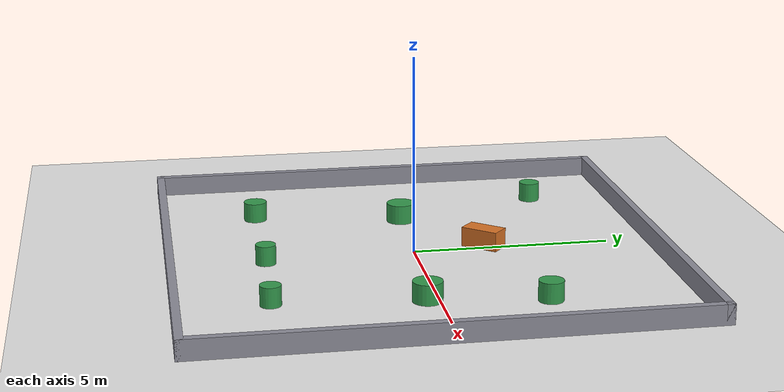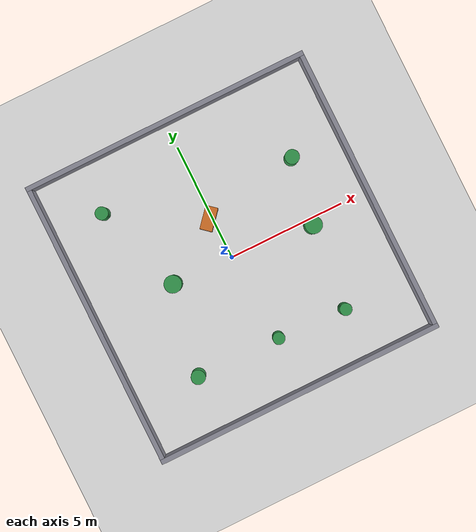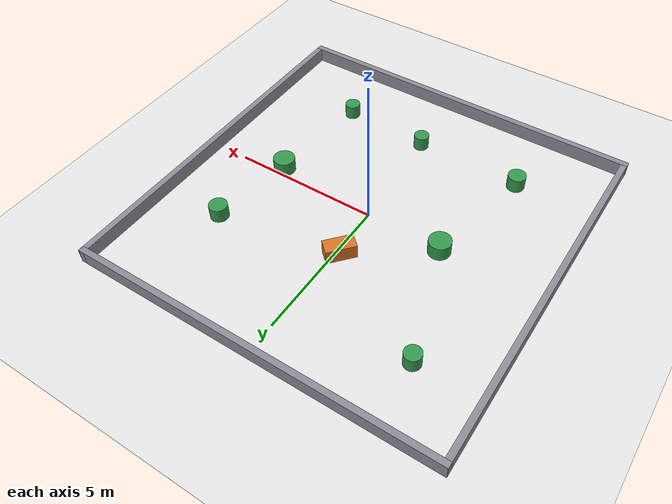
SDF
<?xml version="1.0" ?>
<!-- GENERATED by worlds/gen_worlds.py - do not edit by hand. -->
<sdf version="1.6">
  <world name="simple">
    <gravity>0 0 -9.8</gravity>
    <physics name="ode_500hz" type="ode">
      <max_step_size>0.002</max_step_size>
      <real_time_factor>1.0</real_time_factor>
      <real_time_update_rate>500</real_time_update_rate>
    </physics>

    <!-- ROS interface: exposes /get_entity_state and /set_entity_state (used by the episode runner) -->
    <plugin name="gazebo_ros_state" filename="libgazebo_ros_state.so">
      <ros><namespace>/</namespace></ros>
      <update_rate>10.0</update_rate>
    </plugin>

    <scene>
      <ambient>0.6 0.6 0.6 1</ambient>
      <background>0.85 0.9 0.95 1</background>
      <shadows>false</shadows>
    </scene>

    <light name="sun" type="directional">
      <cast_shadows>false</cast_shadows>
      <pose>0 0 10 0 0 0</pose>
      <diffuse>0.8 0.8 0.8 1</diffuse>
      <specular>0.2 0.2 0.2 1</specular>
      <direction>-0.3 0.2 -1.0</direction>
    </light>

    <model name="ground_plane">
      <static>true</static>
      <link name="link">
        <collision name="collision">
          <geometry><plane><normal>0 0 1</normal><size>40 40</size></plane></geometry>
          <surface><friction><ode><mu>100</mu><mu2>50</mu2></ode></friction></surface>
        </collision>
        <visual name="visual">
          <geometry><plane><normal>0 0 1</normal><size>40 40</size></plane></geometry>
          <material><ambient>0.9 0.9 0.9 1</ambient><diffuse>0.9 0.9 0.9 1</diffuse></material>
        </visual>
      </link>
    </model>

    <model name="wall_north">
      <static>true</static>
      <pose>0.0000 6.1000 0.2500 0 0 0.0000</pose>
      <link name="link">
        <collision name="collision"><geometry><box><size>12.4000 0.2000 0.5000</size></box></geometry></collision>
        <visual name="visual"><geometry><box><size>12.4000 0.2000 0.5000</size></box></geometry>
          <material><ambient>0.55 0.55 0.6 1</ambient><diffuse>0.55 0.55 0.6 1</diffuse></material></visual>
      </link>
    </model>
    <model name="wall_south">
      <static>true</static>
      <pose>0.0000 -6.1000 0.2500 0 0 0.0000</pose>
      <link name="link">
        <collision name="collision"><geometry><box><size>12.4000 0.2000 0.5000</size></box></geometry></collision>
        <visual name="visual"><geometry><box><size>12.4000 0.2000 0.5000</size></box></geometry>
          <material><ambient>0.55 0.55 0.6 1</ambient><diffuse>0.55 0.55 0.6 1</diffuse></material></visual>
      </link>
    </model>
    <model name="wall_east">
      <static>true</static>
      <pose>6.1000 0.0000 0.2500 0 0 0.0000</pose>
      <link name="link">
        <collision name="collision"><geometry><box><size>0.2000 12.4000 0.5000</size></box></geometry></collision>
        <visual name="visual"><geometry><box><size>0.2000 12.4000 0.5000</size></box></geometry>
          <material><ambient>0.55 0.55 0.6 1</ambient><diffuse>0.55 0.55 0.6 1</diffuse></material></visual>
      </link>
    </model>
    <model name="wall_west">
      <static>true</static>
      <pose>-6.1000 0.0000 0.2500 0 0 0.0000</pose>
      <link name="link">
        <collision name="collision"><geometry><box><size>0.2000 12.4000 0.5000</size></box></geometry></collision>
        <visual name="visual"><geometry><box><size>0.2000 12.4000 0.5000</size></box></geometry>
          <material><ambient>0.55 0.55 0.6 1</ambient><diffuse>0.55 0.55 0.6 1</diffuse></material></visual>
      </link>
    </model>
    <model name="simple_cyl_0">
      <static>true</static>
      <pose>3.5108 -0.2843 0.2500 0 0 0</pose>
      <link name="link">
        <collision name="collision"><geometry><cylinder><radius>0.3620</radius><length>0.5000</length></cylinder></geometry></collision>
        <visual name="visual"><geometry><cylinder><radius>0.3620</radius><length>0.5000</length></cylinder></geometry>
          <material><ambient>0.2 0.6 0.3 1</ambient><diffuse>0.2 0.6 0.3 1</diffuse></material></visual>
      </link>
    </model>
    <model name="simple_cyl_1">
      <static>true</static>
      <pose>-2.6063 0.0984 0.2500 0 0 0</pose>
      <link name="link">
        <collision name="collision"><geometry><cylinder><radius>0.3675</radius><length>0.5000</length></cylinder></geometry></collision>
        <visual name="visual"><geometry><cylinder><radius>0.3675</radius><length>0.5000</length></cylinder></geometry>
          <material><ambient>0.2 0.6 0.3 1</ambient><diffuse>0.2 0.6 0.3 1</diffuse></material></visual>
      </link>
    </model>
    <model name="simple_cyl_2">
      <static>true</static>
      <pose>0.2411 -3.7412 0.2500 0 0 0</pose>
      <link name="link">
        <collision name="collision"><geometry><cylinder><radius>0.2530</radius><length>0.5000</length></cylinder></geometry></collision>
        <visual name="visual"><geometry><cylinder><radius>0.2530</radius><length>0.5000</length></cylinder></geometry>
          <material><ambient>0.2 0.6 0.3 1</ambient><diffuse>0.2 0.6 0.3 1</diffuse></material></visual>
      </link>
    </model>
    <model name="simple_cyl_3">
      <static>true</static>
      <pose>-3.3518 -3.6975 0.2500 0 0 0</pose>
      <link name="link">
        <collision name="collision"><geometry><cylinder><radius>0.2993</radius><length>0.5000</length></cylinder></geometry></collision>
        <visual name="visual"><geometry><cylinder><radius>0.2993</radius><length>0.5000</length></cylinder></geometry>
          <material><ambient>0.2 0.6 0.3 1</ambient><diffuse>0.2 0.6 0.3 1</diffuse></material></visual>
      </link>
    </model>
    <model name="simple_cyl_4">
      <static>true</static>
      <pose>3.9521 2.5463 0.2500 0 0 0</pose>
      <link name="link">
        <collision name="collision"><geometry><cylinder><radius>0.3040</radius><length>0.5000</length></cylinder></geometry></collision>
        <visual name="visual"><geometry><cylinder><radius>0.3040</radius><length>0.5000</length></cylinder></geometry>
          <material><ambient>0.2 0.6 0.3 1</ambient><diffuse>0.2 0.6 0.3 1</diffuse></material></visual>
      </link>
    </model>
    <model name="simple_cyl_5">
      <static>true</static>
      <pose>-3.9019 3.9136 0.2500 0 0 0</pose>
      <link name="link">
        <collision name="collision"><geometry><cylinder><radius>0.2708</radius><length>0.5000</length></cylinder></geometry></collision>
        <visual name="visual"><geometry><cylinder><radius>0.2708</radius><length>0.5000</length></cylinder></geometry>
          <material><ambient>0.2 0.6 0.3 1</ambient><diffuse>0.2 0.6 0.3 1</diffuse></material></visual>
      </link>
    </model>
    <model name="simple_box_6">
      <static>true</static>
      <pose>-0.1402 1.8195 0.2500 0 0 0.8557</pose>
      <link name="link">
        <collision name="collision"><geometry><box><size>0.9814 0.5106 0.5000</size></box></geometry></collision>
        <visual name="visual"><geometry><box><size>0.9814 0.5106 0.5000</size></box></geometry>
          <material><ambient>0.85 0.45 0.15 1</ambient><diffuse>0.85 0.45 0.15 1</diffuse></material></visual>
      </link>
    </model>
    <model name="simple_cyl_7">
      <static>true</static>
      <pose>3.1644 -3.8916 0.2500 0 0 0</pose>
      <link name="link">
        <collision name="collision"><geometry><cylinder><radius>0.2563</radius><length>0.5000</length></cylinder></geometry></collision>
        <visual name="visual"><geometry><cylinder><radius>0.2563</radius><length>0.5000</length></cylinder></geometry>
          <material><ambient>0.2 0.6 0.3 1</ambient><diffuse>0.2 0.6 0.3 1</diffuse></material></visual>
      </link>
    </model>

    <!-- top-down camera for rendered (GUI) runs; ignored by gzserver -->
    <gui fullscreen="0">
      <camera name="user_camera">
        <pose>0 0 13 0 1.5708 0</pose>
        <view_controller>orbit</view_controller>
        <projection_type>perspective</projection_type>
      </camera>
    </gui>
  </world>
</sdf>
